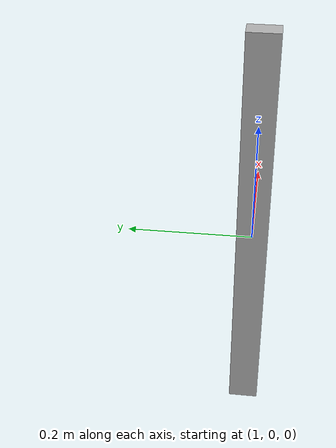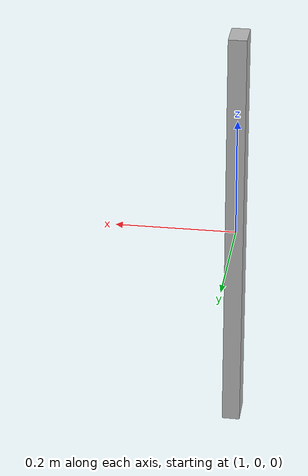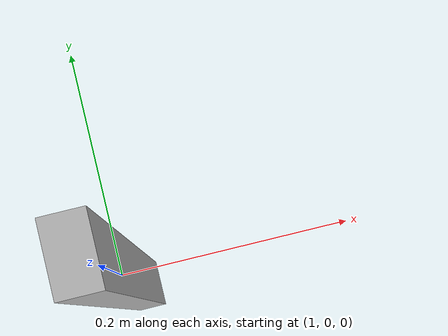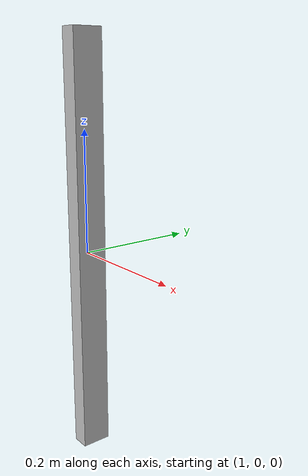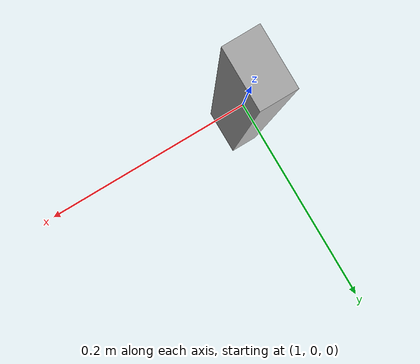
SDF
<?xml version="1.0" ?>
<sdf version="1.5">
  <model name="mpnet_box3">
    <pose frame="world">1 0 0.0 0 0 0</pose>
    <link name="mpnet_box3_link">
      <inertial>
        <mass>0.1</mass>
      </inertial>
      <visual name="mpnet_box3_visual">
        <geometry>
          <box>
            <size>0.03 0.05 0.7</size>
          </box>
        </geometry>
      </visual>

      <collision name="mpnet_box3_collision">
        <geometry>
          <box>
            <size>0.03 0.05 0.7</size>
          </box>
        </geometry>
      </collision>

    </link>
  </model>
</sdf>
